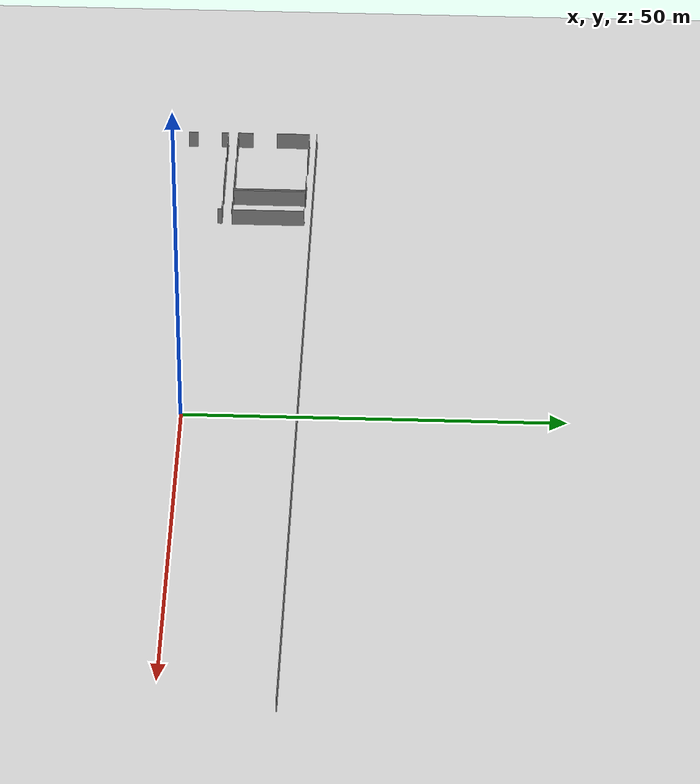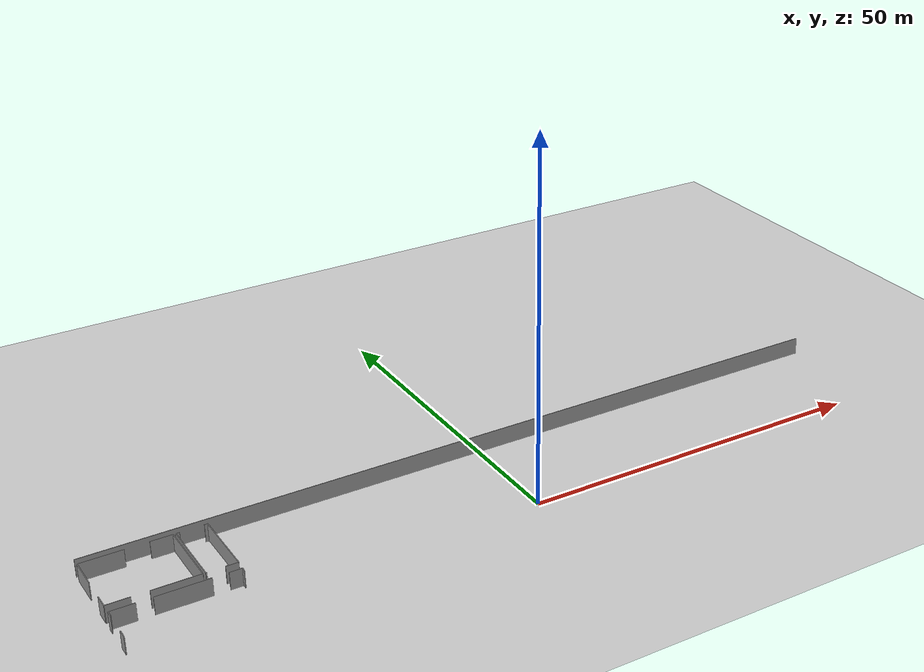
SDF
<sdf version="1.6">
 <world name="default">
  <model name="ground_plane">
   <static>1</static>
   <link name="link">
    <collision name="collision">
     <geometry><plane><normal>0 0 1</normal><size>100 100</size></plane></geometry>
     <surface><friction><ode><mu>100</mu><mu2>50</mu2></ode></friction></surface>
    </collision>
    <visual name="visual">
     <cast_shadows>0</cast_shadows>
     <geometry><plane><normal>0 0 1</normal><size>100 100</size></plane></geometry>
     <material>
      <script><uri>file://media/materials/scripts/gazebo.material</uri><name>Gazebo/Grey</name></script>
     </material>
    </visual>
   </link>
  </model>
  <model name="50056459">
   <static>1</static>
   <link name="Wall_0">
    <collision name="Wall_0_Collision">
     <geometry><box><size>6.43075541853 0.1 2.5</size></box></geometry>
     <pose>3.21537770927 0 1.25 0 0 0</pose>
    </collision>
    <visual name="Wall_0_Visual">
     <pose>3.21537770927 0 1.25 0 0 0</pose>
     <geometry><box><size>6.43075541853 0.1 2.5</size></box></geometry>
     <material>
      <script><uri>file://media/materials/scripts/gazebo.material</uri><name>Gazebo/Grey</name></script>
      <ambient>1 1 1 1</ambient>
     </material>
    </visual>
    <pose>11.8879619199 -10.6324375143 0 0 0 3.14159265359</pose>
   </link>
   <link name="Wall_1">
    <collision name="Wall_1_Collision">
     <geometry><box><size>3.15202385086 0.1 2.5</size></box></geometry>
     <pose>1.57601192543 0 1.25 0 0 0</pose>
    </collision>
    <visual name="Wall_1_Visual">
     <pose>1.57601192543 0 1.25 0 0 0</pose>
     <geometry><box><size>3.15202385086 0.1 2.5</size></box></geometry>
     <material>
      <script><uri>file://media/materials/scripts/gazebo.material</uri><name>Gazebo/Grey</name></script>
      <ambient>1 1 1 1</ambient>
     </material>
    </visual>
    <pose>3.1854455521 -10.6324375143 0 0 0 3.14159265359</pose>
   </link>
   <link name="Wall_2">
    <collision name="Wall_2_Collision">
     <geometry><box><size>1.99124226075 0.1 2.5</size></box></geometry>
     <pose>0.995621130375 0 1.25 0 0 0</pose>
    </collision>
    <visual name="Wall_2_Visual">
     <pose>0.995621130375 0 1.25 0 0 0</pose>
     <geometry><box><size>1.99124226075 0.1 2.5</size></box></geometry>
     <material>
      <script><uri>file://media/materials/scripts/gazebo.material</uri><name>Gazebo/Grey</name></script>
      <ambient>1 1 1 1</ambient>
     </material>
    </visual>
    <pose>0.0334217012374 -10.6324375143 0 0 0 1.57079632679</pose>
   </link>
   <link name="Wall_3">
    <collision name="Wall_3_Collision">
     <geometry><box><size>4.43443129748 0.1 2.5</size></box></geometry>
     <pose>2.21721564874 0 1.25 0 0 0</pose>
    </collision>
    <visual name="Wall_3_Visual">
     <pose>2.21721564874 0 1.25 0 0 0</pose>
     <geometry><box><size>4.43443129748 0.1 2.5</size></box></geometry>
     <material>
      <script><uri>file://media/materials/scripts/gazebo.material</uri><name>Gazebo/Grey</name></script>
      <ambient>1 1 1 1</ambient>
     </material>
    </visual>
    <pose>0.0334217012374 -5.44453572971 0 0 0 1.57079632679</pose>
   </link>
   <link name="Wall_4">
    <collision name="Wall_4_Collision">
     <geometry><box><size>5.72395334852 0.1 2.5</size></box></geometry>
     <pose>2.86197667426 0 1.25 0 0 0</pose>
    </collision>
    <visual name="Wall_4_Visual">
     <pose>2.86197667426 0 1.25 0 0 0</pose>
     <geometry><box><size>5.72395334852 0.1 2.5</size></box></geometry>
     <material>
      <script><uri>file://media/materials/scripts/gazebo.material</uri><name>Gazebo/Grey</name></script>
      <ambient>1 1 1 1</ambient>
     </material>
    </visual>
    <pose>0.0334217012374 -1.01010443223 0 0 0 0.0</pose>
   </link>
   <link name="Wall_5">
    <collision name="Wall_5_Collision">
     <geometry><box><size>2.94849534586 0.1 2.5</size></box></geometry>
     <pose>1.47424767293 0 1.25 0 0 0</pose>
    </collision>
    <visual name="Wall_5_Visual">
     <pose>1.47424767293 0 1.25 0 0 0</pose>
     <geometry><box><size>2.94849534586 0.1 2.5</size></box></geometry>
     <material>
      <script><uri>file://media/materials/scripts/gazebo.material</uri><name>Gazebo/Grey</name></script>
      <ambient>1 1 1 1</ambient>
     </material>
    </visual>
    <pose>8.94573420177 -1.01010443223 0 0 0 0.0</pose>
   </link>
   <link name="Wall_6">
    <collision name="Wall_6_Collision">
     <geometry><box><size>9.62233512331 0.1 2.5</size></box></geometry>
     <pose>4.81116756166 0 1.25 0 0 0</pose>
    </collision>
    <visual name="Wall_6_Visual">
     <pose>4.81116756166 0 1.25 0 0 0</pose>
     <geometry><box><size>9.62233512331 0.1 2.5</size></box></geometry>
     <material>
      <script><uri>file://media/materials/scripts/gazebo.material</uri><name>Gazebo/Grey</name></script>
      <ambient>1 1 1 1</ambient>
     </material>
    </visual>
    <pose>11.8942295476 -1.01010443223 0 0 0 -1.57144768928</pose>
   </link>
   <link name="Wall_17">
    <collision name="Wall_17_Collision">
     <geometry><box><size>0.567982586159 0.1 2.5</size></box></geometry>
     <pose>0.283991293079 0 1.25 0 0 0</pose>
    </collision>
    <visual name="Wall_17_Visual">
     <pose>0.283991293079 0 1.25 0 0 0</pose>
     <geometry><box><size>0.567982586159 0.1 2.5</size></box></geometry>
     <material>
      <script><uri>file://media/materials/scripts/gazebo.material</uri><name>Gazebo/Grey</name></script>
      <ambient>1 1 1 1</ambient>
     </material>
    </visual>
    <pose>16.2392201038 -12.5616810794 0 0 0 1.57079632679</pose>
   </link>
   <link name="Wall_18">
    <collision name="Wall_18_Collision">
     <geometry><box><size>1.67074627118 0.1 2.5</size></box></geometry>
     <pose>0.835373135592 0 1.25 0 0 0</pose>
    </collision>
    <visual name="Wall_18_Visual">
     <pose>0.835373135592 0 1.25 0 0 0</pose>
     <geometry><box><size>1.67074627118 0.1 2.5</size></box></geometry>
     <material>
      <script><uri>file://media/materials/scripts/gazebo.material</uri><name>Gazebo/Grey</name></script>
      <ambient>1 1 1 1</ambient>
     </material>
    </visual>
    <pose>16.2392201038 -11.9936984932 0 0 0 3.14159265359</pose>
   </link>
   <link name="Wall_19">
    <collision name="Wall_19_Collision">
     <geometry><box><size>7.14899167422 0.1 2.5</size></box></geometry>
     <pose>3.57449583711 0 1.25 0 0 0</pose>
    </collision>
    <visual name="Wall_19_Visual">
     <pose>3.57449583711 0 1.25 0 0 0</pose>
     <geometry><box><size>7.14899167422 0.1 2.5</size></box></geometry>
     <material>
      <script><uri>file://media/materials/scripts/gazebo.material</uri><name>Gazebo/Grey</name></script>
      <ambient>1 1 1 1</ambient>
     </material>
    </visual>
    <pose>12.4996485047 -11.9936984932 0 0 0 3.14159265359</pose>
   </link>
   <link name="Wall_20">
    <collision name="Wall_20_Collision">
     <geometry><box><size>3.22962385764 0.1 2.5</size></box></geometry>
     <pose>1.61481192882 0 1.25 0 0 0</pose>
    </collision>
    <visual name="Wall_20_Visual">
     <pose>1.61481192882 0 1.25 0 0 0</pose>
     <geometry><box><size>3.22962385764 0.1 2.5</size></box></geometry>
     <material>
      <script><uri>file://media/materials/scripts/gazebo.material</uri><name>Gazebo/Grey</name></script>
      <ambient>1 1 1 1</ambient>
     </material>
    </visual>
    <pose>3.27234536323 -11.9936984932 0 0 0 3.14159265359</pose>
   </link>
   <link name="Wall_21">
    <collision name="Wall_21_Collision">
     <geometry><box><size>0.873571785512 0.1 2.5</size></box></geometry>
     <pose>0.436785892756 0 1.25 0 0 0</pose>
    </collision>
    <visual name="Wall_21_Visual">
     <pose>0.436785892756 0 1.25 0 0 0</pose>
     <geometry><box><size>0.873571785512 0.1 2.5</size></box></geometry>
     <material>
      <script><uri>file://media/materials/scripts/gazebo.material</uri><name>Gazebo/Grey</name></script>
      <ambient>1 1 1 1</ambient>
     </material>
    </visual>
    <pose>0.0427215055858 -11.9936984932 0 0 0 -1.57079632679</pose>
   </link>
   <link name="Wall_22">
    <collision name="Wall_22_Collision">
     <geometry><box><size>1.27419177247 0.1 2.5</size></box></geometry>
     <pose>0.637095886234 0 1.25 0 0 0</pose>
    </collision>
    <visual name="Wall_22_Visual">
     <pose>0.637095886234 0 1.25 0 0 0</pose>
     <geometry><box><size>1.27419177247 0.1 2.5</size></box></geometry>
     <material>
      <script><uri>file://media/materials/scripts/gazebo.material</uri><name>Gazebo/Grey</name></script>
      <ambient>1 1 1 1</ambient>
     </material>
    </visual>
    <pose>0.0427215055858 -16.0676565001 0 0 0 -1.57079632679</pose>
   </link>
   <link name="Wall_38">
    <collision name="Wall_38_Collision">
     <geometry><box><size>1.66464803883 0.1 2.5</size></box></geometry>
     <pose>0.832324019413 0 1.25 0 0 0</pose>
    </collision>
    <visual name="Wall_38_Visual">
     <pose>0.832324019413 0 1.25 0 0 0</pose>
     <geometry><box><size>1.66464803883 0.1 2.5</size></box></geometry>
     <material>
      <script><uri>file://media/materials/scripts/gazebo.material</uri><name>Gazebo/Grey</name></script>
      <ambient>1 1 1 1</ambient>
     </material>
    </visual>
    <pose>16.3395021471 -10.6348090491 0 0 0 3.14159265359</pose>
   </link>
   <link name="Wall_39">
    <collision name="Wall_39_Collision">
     <geometry><box><size>0.14737394869 0.1 2.5</size></box></geometry>
     <pose>0.0736869743451 0 1.25 0 0 0</pose>
    </collision>
    <visual name="Wall_39_Visual">
     <pose>0.0736869743451 0 1.25 0 0 0</pose>
     <geometry><box><size>0.14737394869 0.1 2.5</size></box></geometry>
     <material>
      <script><uri>file://media/materials/scripts/gazebo.material</uri><name>Gazebo/Grey</name></script>
      <ambient>1 1 1 1</ambient>
     </material>
    </visual>
    <pose>12.3722632065 -10.6348090491 0 0 0 3.14159265359</pose>
   </link>
   <link name="Wall_40">
    <collision name="Wall_40_Collision">
     <geometry><box><size>9.6150490823 0.1 2.5</size></box></geometry>
     <pose>4.80752454115 0 1.25 0 0 0</pose>
    </collision>
    <visual name="Wall_40_Visual">
     <pose>4.80752454115 0 1.25 0 0 0</pose>
     <geometry><box><size>9.6150490823 0.1 2.5</size></box></geometry>
     <material>
      <script><uri>file://media/materials/scripts/gazebo.material</uri><name>Gazebo/Grey</name></script>
      <ambient>1 1 1 1</ambient>
     </material>
    </visual>
    <pose>12.2248892578 -10.6348090491 0 0 0 1.57079632679</pose>
   </link>
   <link name="Wall_41">
    <collision name="Wall_41_Collision">
     <geometry><box><size>0.486503426021 0.1 2.5</size></box></geometry>
     <pose>0.24325171301 0 1.25 0 0 0</pose>
    </collision>
    <visual name="Wall_41_Visual">
     <pose>0.24325171301 0 1.25 0 0 0</pose>
     <geometry><box><size>0.486503426021 0.1 2.5</size></box></geometry>
     <material>
      <script><uri>file://media/materials/scripts/gazebo.material</uri><name>Gazebo/Grey</name></script>
      <ambient>1 1 1 1</ambient>
     </material>
    </visual>
    <pose>12.2248892578 -1.0197599668 0 0 0 0.0</pose>
   </link>
   <link name="Wall_42">
    <collision name="Wall_42_Collision">
     <geometry><box><size>0.44567914828 0.1 2.5</size></box></geometry>
     <pose>0.22283957414 0 1.25 0 0 0</pose>
    </collision>
    <visual name="Wall_42_Visual">
     <pose>0.22283957414 0 1.25 0 0 0</pose>
     <geometry><box><size>0.44567914828 0.1 2.5</size></box></geometry>
     <material>
      <script><uri>file://media/materials/scripts/gazebo.material</uri><name>Gazebo/Grey</name></script>
      <ambient>1 1 1 1</ambient>
     </material>
    </visual>
    <pose>15.8807795574 -1.0197599668 0 0 0 0.0</pose>
   </link>
   <link name="Wall_43">
    <collision name="Wall_43_Collision">
     <geometry><box><size>9.61505792944 0.1 2.5</size></box></geometry>
     <pose>4.80752896472 0 1.25 0 0 0</pose>
    </collision>
    <visual name="Wall_43_Visual">
     <pose>4.80752896472 0 1.25 0 0 0</pose>
     <geometry><box><size>9.61505792944 0.1 2.5</size></box></geometry>
     <material>
      <script><uri>file://media/materials/scripts/gazebo.material</uri><name>Gazebo/Grey</name></script>
      <ambient>1 1 1 1</ambient>
     </material>
    </visual>
    <pose>16.3264587057 -1.0197599668 0 0 0 -1.56943976238</pose>
   </link>
   <link name="Wall_307">
    <collision name="Wall_307_Collision">
     <geometry><box><size>110.200953696 0.1 2.5</size></box></geometry>
     <pose>55.1004768479 0 1.25 0 0 0</pose>
    </collision>
    <visual name="Wall_307_Visual">
     <pose>55.1004768479 0 1.25 0 0 0</pose>
     <geometry><box><size>110.200953696 0.1 2.5</size></box></geometry>
     <material>
      <script><uri>file://media/materials/scripts/gazebo.material</uri><name>Gazebo/Grey</name></script>
      <ambient>1 1 1 1</ambient>
     </material>
    </visual>
   </link>
   <pose>-55.1 15.1656682223 0 0 0 0</pose>
  </model>
 </world>
</sdf>
